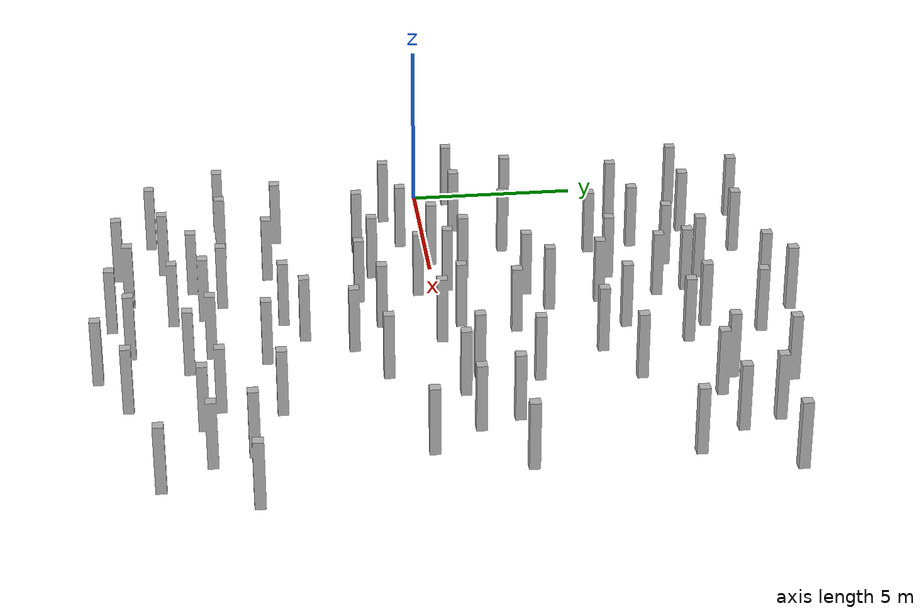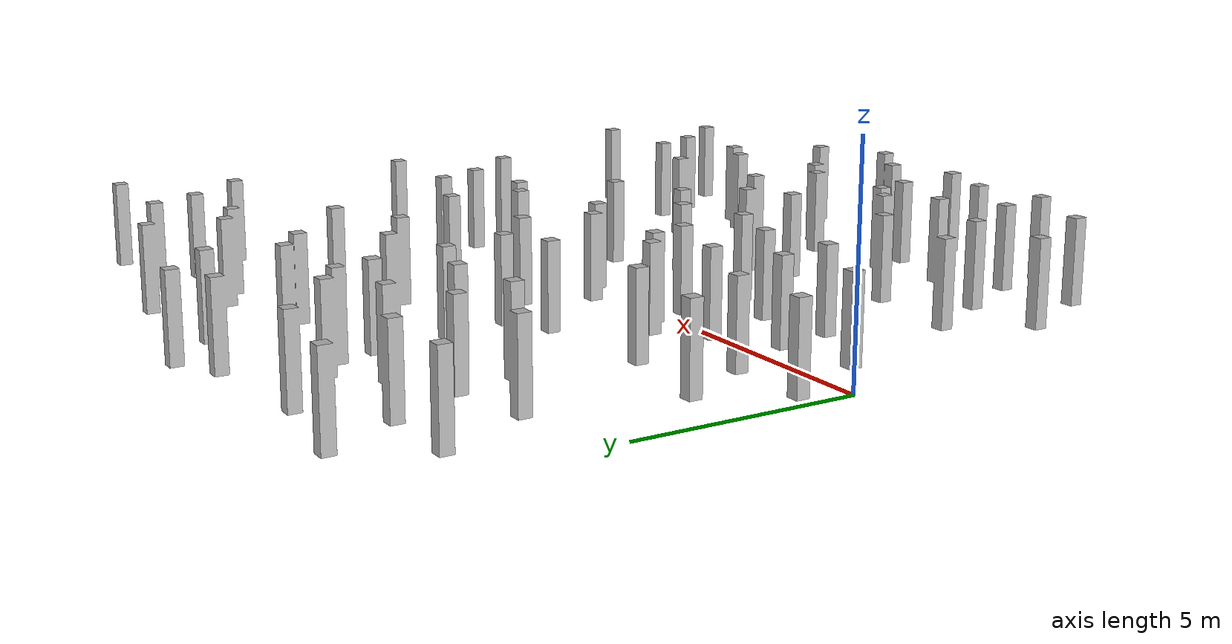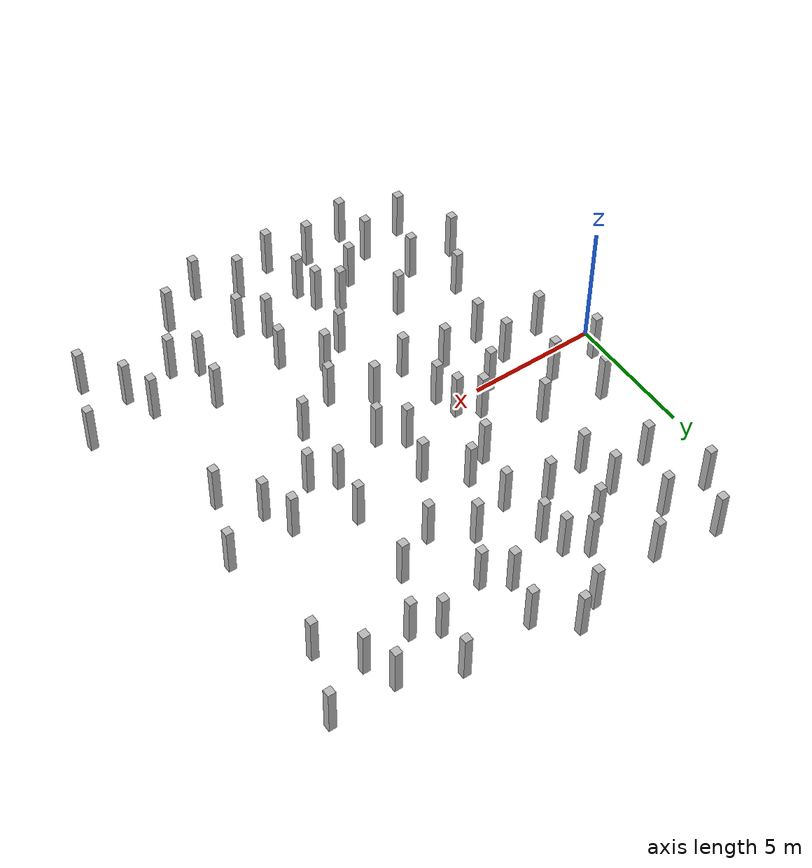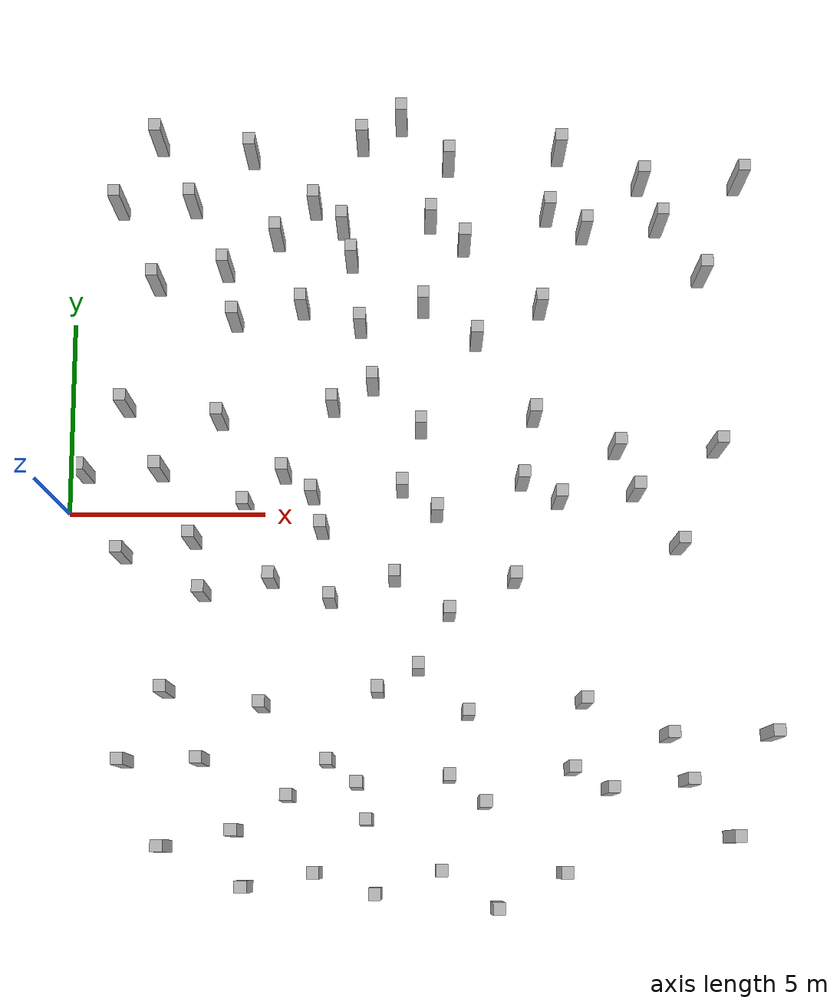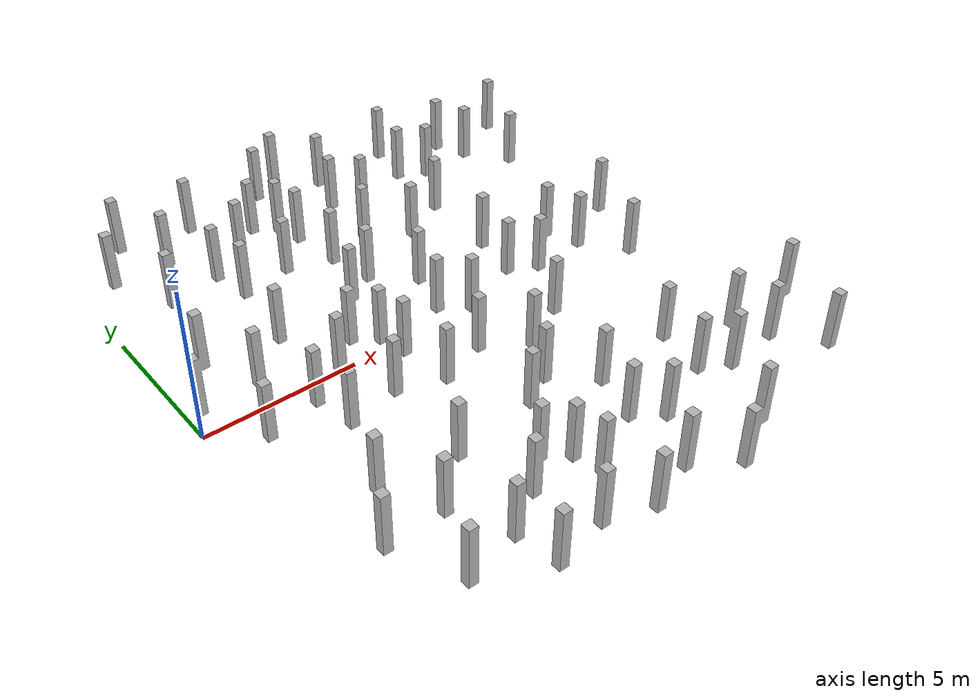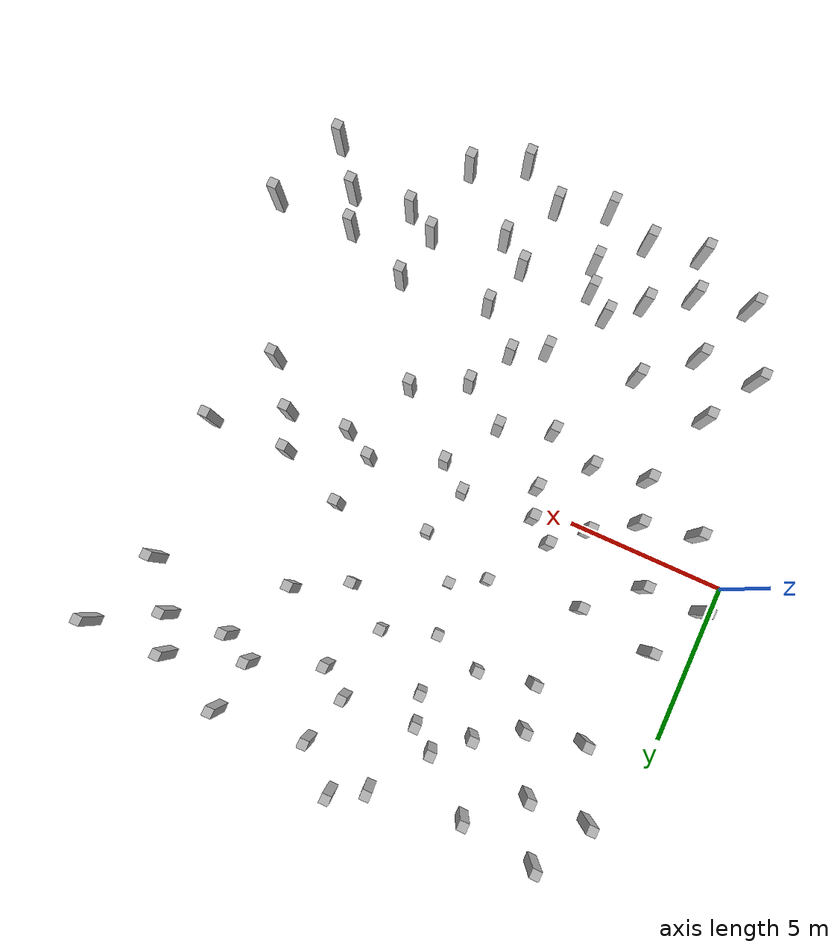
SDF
<sdf version="1.6">
 <world name="world">
  <model name="ground_plane">
   <static>1</static>
   <link name="link">
    <collision name="collision">
     <geometry><plane><normal>0 0 1</normal><size>100 100</size></plane></geometry>
     <surface><friction><ode><mu>100</mu><mu2>50</mu2></ode></friction></surface>
    </collision>
    <velocity_decay><linear>0</linear><angular>0</angular></velocity_decay>
   </link>
  </model>
  <model name="pillars">
   <static>1</static>
   <link name="body">
    <visual name="visual">
     <pose>0 0 -0.001 0 -0 0</pose>
     <geometry><mesh><uri>model://pillars/pillars.dae</uri><scale>1 1 1</scale></mesh></geometry>
    </visual>
    <collision name="pillars">
     <pose>0 0 -0.001 0 -0 0</pose>
     <geometry><mesh><uri>model://pillars/pillars.dae</uri><scale>1 1 1</scale></mesh></geometry>
    </collision>
    <velocity_decay><linear>0</linear><angular>0</angular></velocity_decay>
   </link>
  </model>
  <physics name="default_physics" default="0" type="ode">
   <max_step_size>0.001</max_step_size>
   <real_time_factor>1</real_time_factor>
   <real_time_update_rate>1000</real_time_update_rate>
  </physics>
  <scene><ambient>0.4 0.4 0.4 1</ambient><background>0.7 0.7 0.7 1</background><shadows>1</shadows></scene>
  <spherical_coordinates>
   <surface_model>EARTH_WGS84</surface_model>
   <latitude_deg>0</latitude_deg>
   <longitude_deg>0</longitude_deg>
   <elevation>0</elevation>
   <heading_deg>0</heading_deg>
  </spherical_coordinates>
  <gravity>0 0 -9.8</gravity>
  <magnetic_field>6e-06 2.3e-05 -4.2e-05</magnetic_field>
  <atmosphere type="adiabatic"/>
  <model name="pillars_clone">
   <static>1</static>
   <link name="body">
    <visual name="visual">
     <pose>0 0 -0.001 0 -0 0</pose>
     <geometry><mesh><uri>model://pillars/pillars.dae</uri><scale>1 1 1</scale></mesh></geometry>
    </visual>
    <collision name="pillars">
     <pose>0 0 -0.001 0 -0 0</pose>
     <geometry><mesh><uri>model://pillars/pillars.dae</uri><scale>1 1 1</scale></mesh></geometry>
    </collision>
    <velocity_decay><linear>0</linear><angular>0</angular></velocity_decay>
   </link>
   <pose>0.71975 7.07058 0 0 -0 0</pose>
  </model>
  <model name="pillars_clone_0">
   <static>1</static>
   <link name="body">
    <visual name="visual">
     <pose>0 0 -0.001 0 -0 0</pose>
     <geometry><mesh><uri>model://pillars/pillars.dae</uri><scale>1 1 1</scale></mesh></geometry>
    </visual>
    <collision name="pillars">
     <pose>0 0 -0.001 0 -0 0</pose>
     <geometry><mesh><uri>model://pillars/pillars.dae</uri><scale>1 1 1</scale></mesh></geometry>
    </collision>
    <velocity_decay><linear>0</linear><angular>0</angular></velocity_decay>
   </link>
   <pose>1.1639 -7.26361 0 0 -0 0</pose>
  </model>
 </world>
</sdf>
